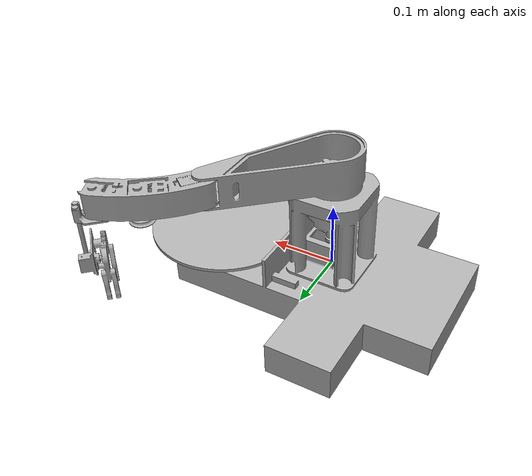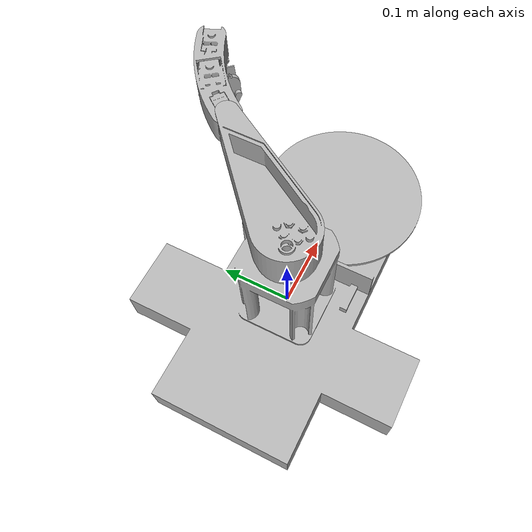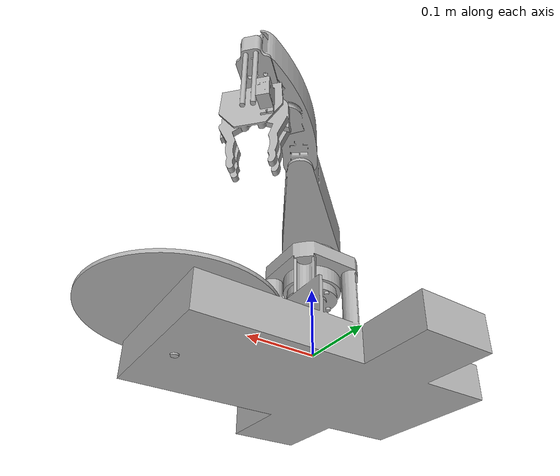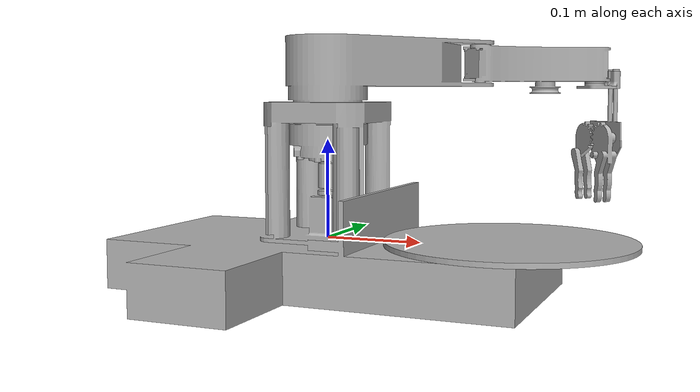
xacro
<?xml version="1.0" ?>
<robot name="arm_assy_backup" xmlns:xacro="http://www.ros.org/wiki/xacro">

<xacro:include filename="$(find arm_assy_backup_description)/urdf/materials.xacro" />
<xacro:include filename="$(find arm_assy_backup_description)/urdf/arm_assy_backup.trans" />
<xacro:include filename="$(find arm_assy_backup_description)/urdf/arm_assy_backup.gazebo" />
<link name="base_link">
  <inertial>
    <origin rpy="0 0 0" xyz="-0.0009507287134129516 -2.103316465624298e-15 -0.017407384171893137"/>
    <mass value="5.608695255633382"/>
    <inertia ixx="0.044211" ixy="-0.0" ixz="-0.000213" iyy="0.072172" iyz="0.0" izz="0.103835"/>
  </inertial>
  <visual>
    <origin rpy="0 0 0" xyz="0 0 0"/>
    <geometry>
      <mesh filename="package://arm_assy_backup_description/meshes/base_link.stl" scale="0.001 0.001 0.001"/>
    </geometry>
    <material name="silver"/>
  </visual>
  <collision>
    <origin rpy="0 0 0" xyz="0 0 0"/>
    <geometry>
      <mesh filename="package://arm_assy_backup_description/meshes/base_link.stl" scale="0.001 0.001 0.001"/>
    </geometry>
  </collision>
</link>

<link name="armA_1">
  <inertial>
    <origin rpy="0 0 0" xyz="0.013334027173307894 0.01626500178908685 0.016722436439834704"/>
    <mass value="0.37431007884671536"/>
    <inertia ixx="0.001123" ixy="-0.000406" ixz="-0.000201" iyy="0.00095" iyz="-0.000246" izz="0.001166"/>
  </inertial>
  <visual>
    <origin rpy="0 0 0" xyz="-0.0 -0.0 -0.118"/>
    <geometry>
      <mesh filename="package://arm_assy_backup_description/meshes/armA_1.stl" scale="0.001 0.001 0.001"/>
    </geometry>
    <material name="silver"/>
  </visual>
  <collision>
    <origin rpy="0 0 0" xyz="-0.0 -0.0 -0.118"/>
    <geometry>
      <mesh filename="package://arm_assy_backup_description/meshes/armA_1.stl" scale="0.001 0.001 0.001"/>
    </geometry>
  </collision>
</link>

<link name="armB_1">
  <inertial>
    <origin rpy="0 0 0" xyz="0.03355630303953762 -0.062499232501169635 -0.022605136354354627"/>
    <mass value="0.18361177429179534"/>
    <inertia ixx="0.000375" ixy="0.000138" ixz="4e-06" iyy="0.00011" iyz="-7e-06" izz="0.000429"/>
  </inertial>
  <visual>
    <origin rpy="0 0 0" xyz="-0.117916 -0.142551 -0.2"/>
    <geometry>
      <mesh filename="package://arm_assy_backup_description/meshes/armB_1.stl" scale="0.001 0.001 0.001"/>
    </geometry>
    <material name="silver"/>
  </visual>
  <collision>
    <origin rpy="0 0 0" xyz="-0.117916 -0.142551 -0.2"/>
    <geometry>
      <mesh filename="package://arm_assy_backup_description/meshes/armB_1.stl" scale="0.001 0.001 0.001"/>
    </geometry>
  </collision>
</link>

<link name="couple_1">
  <inertial>
    <origin rpy="0 0 0" xyz="0.0053766945444645164 -0.009849440277220685 -0.0008149189658958333"/>
    <mass value="0.00839129633664824"/>
    <inertia ixx="2e-06" ixy="0.0" ixz="-0.0" iyy="1e-06" iyz="0.0" izz="2e-06"/>
  </inertial>
  <visual>
    <origin rpy="0 0 0" xyz="-0.172468 -0.013617 -0.158"/>
    <geometry>
      <mesh filename="package://arm_assy_backup_description/meshes/couple_1.stl" scale="0.001 0.001 0.001"/>
    </geometry>
    <material name="silver"/>
  </visual>
  <collision>
    <origin rpy="0 0 0" xyz="-0.172468 -0.013617 -0.158"/>
    <geometry>
      <mesh filename="package://arm_assy_backup_description/meshes/couple_1.stl" scale="0.001 0.001 0.001"/>
    </geometry>
  </collision>
</link>

<link name="claw_1">
  <inertial>
    <origin rpy="0 0 0" xyz="-0.0016473444138072335 0.017910578349190548 -0.08634622471344726"/>
    <mass value="0.040118536229387894"/>
    <inertia ixx="3.2e-05" ixy="-3e-06" ixz="-3e-06" iyy="3.9e-05" iyz="5e-06" izz="1.8e-05"/>
  </inertial>
  <visual>
    <origin rpy="0 0 0" xyz="-0.180058 0.010722 -0.172"/>
    <geometry>
      <mesh filename="package://arm_assy_backup_description/meshes/claw_1.stl" scale="0.001 0.001 0.001"/>
    </geometry>
    <material name="silver"/>
  </visual>
  <collision>
    <origin rpy="0 0 0" xyz="-0.180058 0.010722 -0.172"/>
    <geometry>
      <mesh filename="package://arm_assy_backup_description/meshes/claw_1.stl" scale="0.001 0.001 0.001"/>
    </geometry>
  </collision>
</link>

<link name="carousel_1">
  <inertial>
    <origin rpy="0 0 0" xyz="0.00741399999999498 6.7750877101282055e-15 0.004937819420783649"/>
    <mass value="0.23051436095715144"/>
    <inertia ixx="0.00082" ixy="0.0" ixz="-0.0" iyy="0.00082" iyz="0.0" izz="0.001629"/>
  </inertial>
  <visual>
    <origin rpy="0 0 0" xyz="-0.182586 0.0 -0.0"/>
    <geometry>
      <mesh filename="package://arm_assy_backup_description/meshes/carousel_1.stl" scale="0.001 0.001 0.001"/>
    </geometry>
    <material name="silver"/>
  </visual>
  <collision>
    <origin rpy="0 0 0" xyz="-0.182586 0.0 -0.0"/>
    <geometry>
      <mesh filename="package://arm_assy_backup_description/meshes/carousel_1.stl" scale="0.001 0.001 0.001"/>
    </geometry>
  </collision>
</link>

<joint name="theta1" type="continuous">
  <origin rpy="0 0 0" xyz="0.0 0.0 0.118"/>
  <parent link="base_link"/>
  <child link="armA_1"/>
  <axis xyz="-0.0 0.0 1.0"/>
</joint>

<joint name="theta2" type="revolute">
  <origin rpy="0 0 0" xyz="0.117916 0.142551 0.082"/>
  <parent link="armA_1"/>
  <child link="armB_1"/>
  <axis xyz="0.0 -0.0 -1.0"/>
  <limit effort="100" lower="-3.141593" upper="-0.523599" velocity="100"/>
</joint>

<joint name="theta3" type="revolute">
  <origin rpy="0 0 0" xyz="0.054552 -0.128934 -0.042"/>
  <parent link="armB_1"/>
  <child link="couple_1"/>
  <axis xyz="0.0 -0.0 -1.0"/>
  <limit effort="100" lower="-1.308997" upper="1.832596" velocity="100"/>
</joint>

<joint name="theta4" type="prismatic">
  <origin rpy="0 0 0" xyz="0.00759 -0.024339 0.014"/>
  <parent link="couple_1"/>
  <child link="claw_1"/>
  <axis xyz="0.0 -0.0 -1.0"/>
  <limit effort="100" lower="-0.037" upper="0.0" velocity="100"/>
</joint>

<joint name="thetaCarousel" type="continuous">
  <origin rpy="0 0 0" xyz="0.182586 0.0 0.0"/>
  <parent link="base_link"/>
  <child link="carousel_1"/>
  <axis xyz="0.0 -0.0 -1.0"/>
</joint>

</robot>

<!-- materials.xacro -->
<robot name="arm_assy_backup" xmlns:xacro="http://www.ros.org/wiki/xacro" >

<material name="silver">
  <color rgba="0.700 0.700 0.700 1.000"/>
</material>

</robot>

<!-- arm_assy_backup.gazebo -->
<robot name="arm_assy_backup" xmlns:xacro="http://www.ros.org/wiki/xacro" >

<xacro:property name="body_color" value="Gazebo/Silver" />

<gazebo>
  <plugin filename="libgazebo_ros_control.so" name="control"/>
</gazebo>
<gazebo reference="base_link">
  <material>${body_color}</material>
  <mu1>0.2</mu1>
  <mu2>0.2</mu2>
  <selfCollide>true</selfCollide>
  <gravity>true</gravity>
</gazebo>

<gazebo reference="armA_1">
  <material>${body_color}</material>
  <mu1>0.2</mu1>
  <mu2>0.2</mu2>
  <selfCollide>true</selfCollide>
</gazebo>

<gazebo reference="armB_1">
  <material>${body_color}</material>
  <mu1>0.2</mu1>
  <mu2>0.2</mu2>
  <selfCollide>true</selfCollide>
</gazebo>

<gazebo reference="couple_1">
  <material>${body_color}</material>
  <mu1>0.2</mu1>
  <mu2>0.2</mu2>
  <selfCollide>true</selfCollide>
</gazebo>

<gazebo reference="claw_1">
  <material>${body_color}</material>
  <mu1>0.2</mu1>
  <mu2>0.2</mu2>
  <selfCollide>true</selfCollide>
</gazebo>

<gazebo reference="carousel_1">
  <material>${body_color}</material>
  <mu1>0.2</mu1>
  <mu2>0.2</mu2>
  <selfCollide>true</selfCollide>
</gazebo>

</robot>
